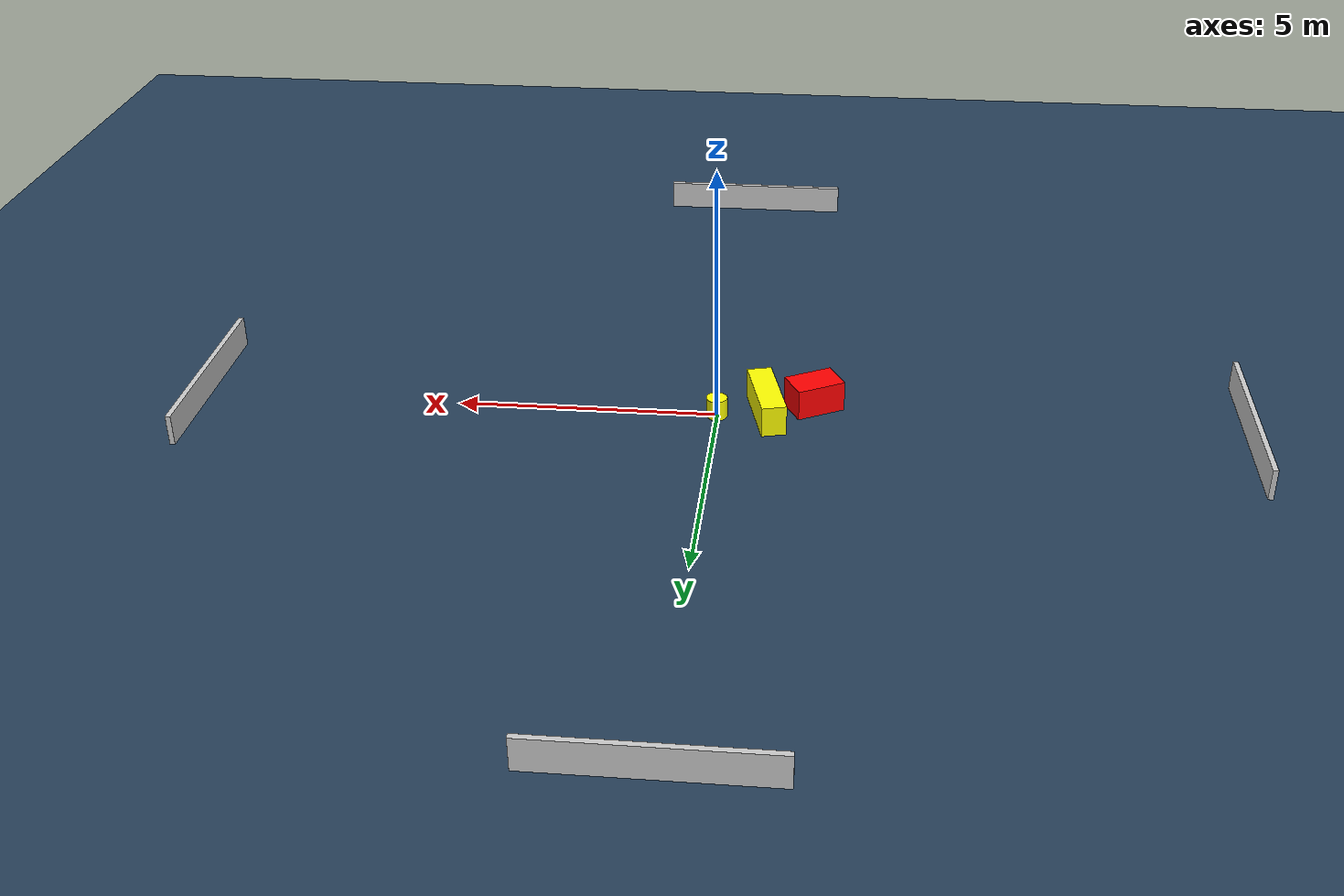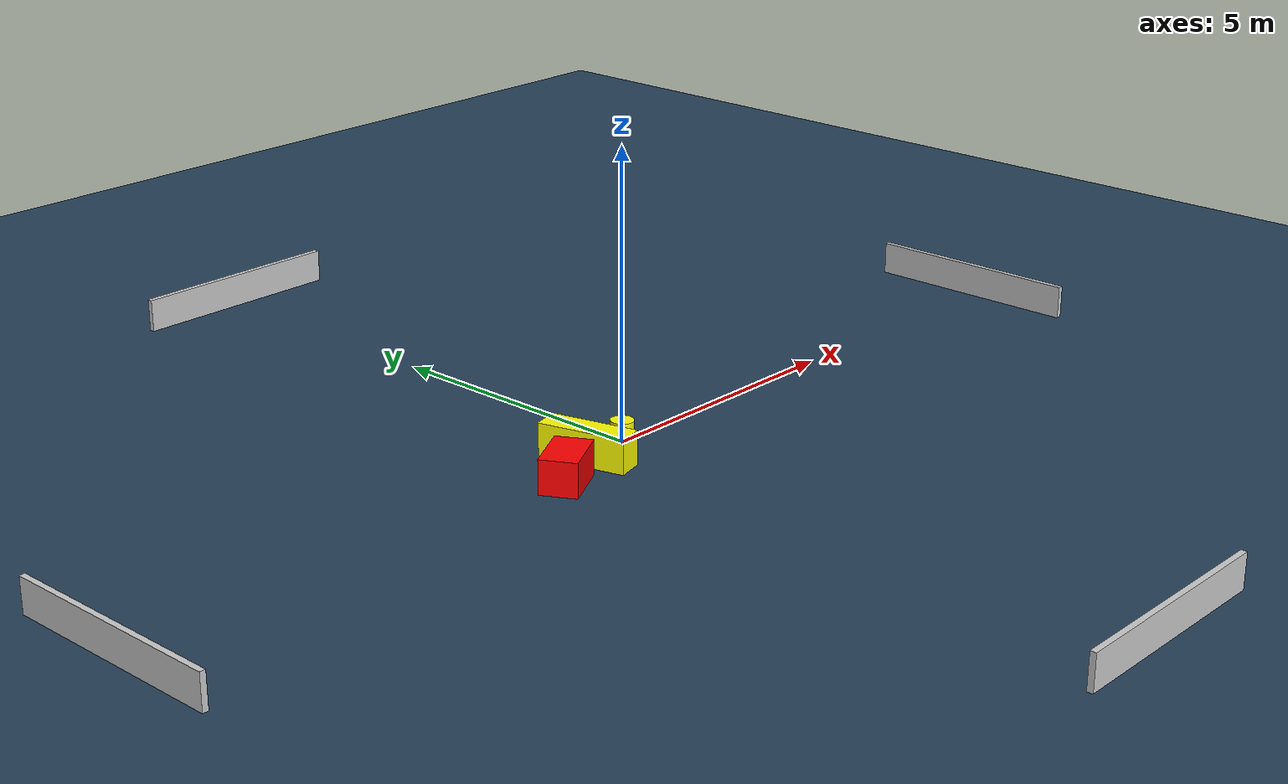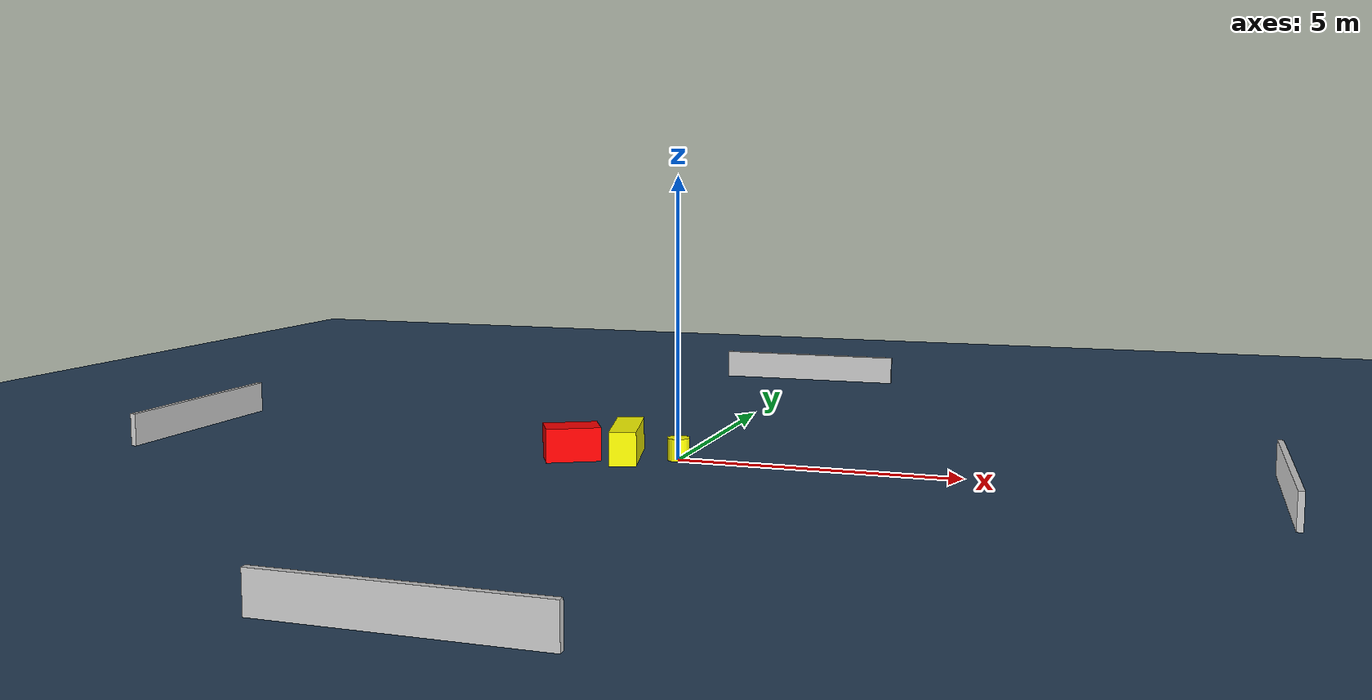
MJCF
<?xml version="1.0" ?>
<mujoco model="generated_environment">
  <option timestep="0.01" integrator="RK4" cone="elliptic"/>
  <default>
    <geom density="1"/>
  </default>
  <asset>
    <texture builtin="gradient" height="3072" name="skybox" rgb1="0.3 0.5 0.7" rgb2="0 0 0" type="skybox" width="512"/>
    <texture builtin="checker" height="300" name="groundplane" rgb1="0.2 0.3 0.4" rgb2="0.1 0.2 0.3" type="2d" width="300"/>
    <material name="groundplane" reflectance="0.2" texrepeat="5 5" texture="groundplane"/>
  </asset>
  <worldbody>
    <light dir="0 0 -1" directional="true" pos="0 0 1.5"/>
    <geom condim="3" friction="0.5 0.005 0.001" material="groundplane" name="floor" pos="0 0 0" size="0 0 0.05" type="plane"/>
    <body name="walls">
      <geom name="wall_1" condim="4" pos="-10.0 0.0 0.3" rgba="0.800000011920929 0.800000011920929 0.800000011920929 1.0" size="0.05 2.0 0.3" type="box"/>
      <geom name="wall_2" condim="4" pos="10.0 0.0 0.3" rgba="0.800000011920929 0.800000011920929 0.800000011920929 1.0" size="0.05 2.0 0.3" type="box"/>
      <geom name="wall_3" condim="4" pos="0.0 -10.0 0.3" rgba="0.800000011920929 0.800000011920929 0.800000011920929 1.0" size="2.0 0.05 0.3" type="box"/>
      <geom name="wall_4" condim="4" pos="0.0 10.0 0.3" rgba="0.800000011920929 0.800000011920929 0.800000011920929 1.0" size="2.0 0.05 0.3" type="box"/>
    </body>
    <body name="robot">
      <joint name="joint_x" type="slide" pos="0 0 0" axis="1 0 0"/>
      <joint name="joint_y" type="slide" pos="0 0 0" axis="0 1 0"/>
      <geom name="robot" type="cylinder" pos="0.0 0.0 0.2" size="0.2 0.2 0.0" mass="5.0" friction="1.0 0.005 0.0001" condim="4" rgba="1.0 1.0 0.0 1.0"/>
    </body>
    <body name="obstacle_1_movable">
      <geom name="obstacle_1_movable" condim="4" pos="-0.9347939988978191 -0.10885239608733169 0.3" euler="0 0 104.54290567525393" friction="0.0 0.005 0.001" rgba="1.0 1.0 0.0 1.0" size="0.7742345853303607 0.23933421786705297 0.3" type="box" mass="0.1"/>
      <joint type="free"/>
    </body>
    <body name="obstacle_2_static">
      <geom name="obstacle_2_static" condim="4" pos="-1.8337605198736096 -0.497019473240758 0.3" euler="0 0 28.543794844227296" friction="0.0 0.005 0.001" rgba="1.0 0.0 0.0 1.0" size="0.486218770412299 0.32268888412002666 0.3" type="box"/>
    </body>
  </worldbody>
  <actuator>
    <motor name="actuator_x" joint="joint_x" gear="1" ctrlrange="-1 1"/>
    <motor name="actuator_y" joint="joint_y" gear="1" ctrlrange="-1 1"/>
  </actuator>
</mujoco>
